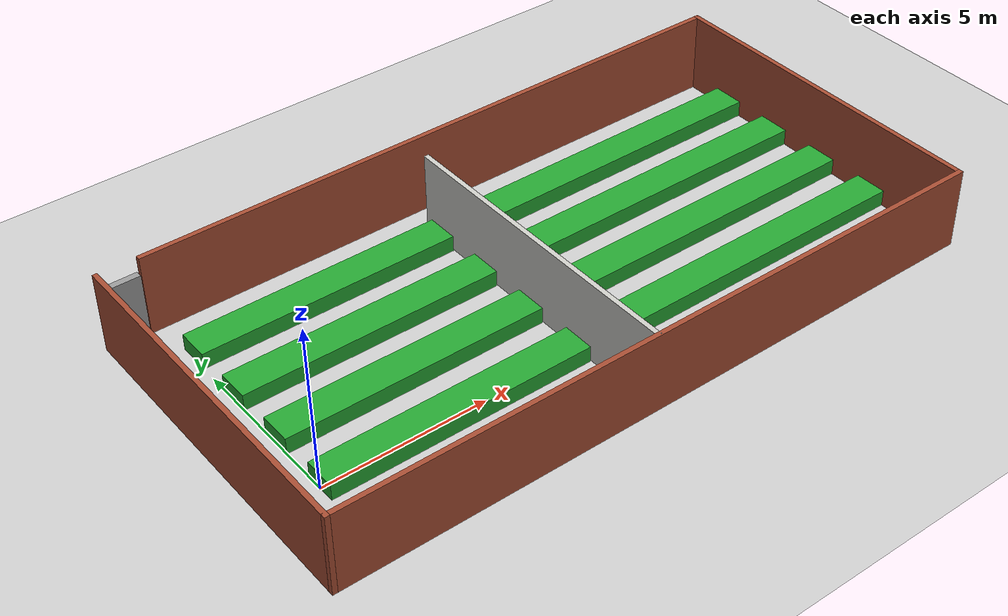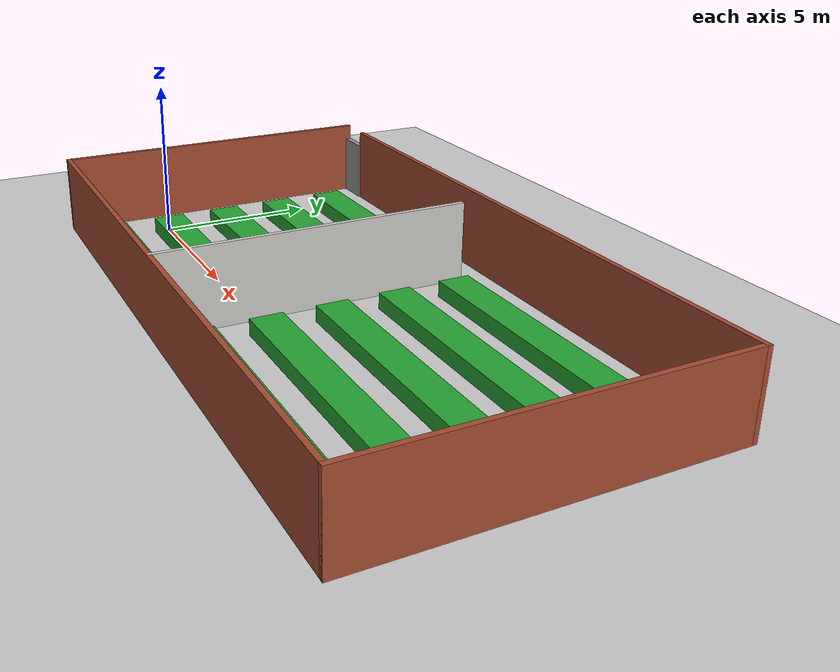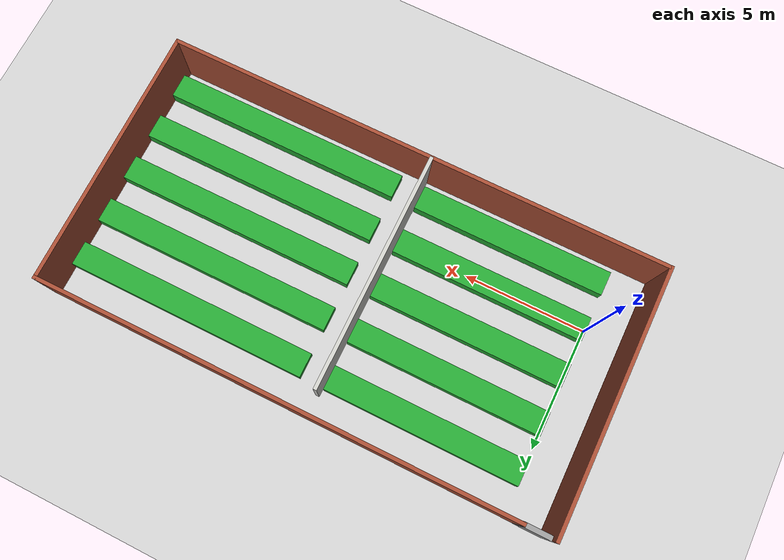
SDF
<sdf version="1.7">
 <world name="default">
  <light name="sun" type="directional">
   <pose>0 0 10 0 -0 0</pose>
   <diffuse>0.8 0.8 0.8 1</diffuse>
   <specular>0.2 0.2 0.2 1</specular>
   <attenuation>
    <range>1000</range>
    <constant>0.9</constant>
    <linear>0.01</linear>
    <quadratic>0.001</quadratic>
   </attenuation>
   <direction>-0.5 0.1 -0.9</direction>
   <spot><inner_angle>0</inner_angle><outer_angle>0</outer_angle><falloff>0</falloff></spot>
  </light>
  <model name="ground_plane">
   <static>1</static>
   <link name="link">
    <collision name="collision">
     <geometry><plane><normal>0 0 1</normal><size>100 100</size></plane></geometry>
     <surface>
      <contact><collide_bitmask>65535</collide_bitmask></contact>
      <friction><ode><mu>100</mu><mu2>50</mu2></ode></friction>
     </surface>
    </collision>
    <visual name="visual">
     <cast_shadows>0</cast_shadows>
     <geometry><plane><normal>0 0 1</normal><size>100 100</size></plane></geometry>
     <material>
      <script><uri>file://media/materials/scripts/gazebo.material</uri><name>Gazebo/Grey</name></script>
     </material>
    </visual>
   </link>
  </model>
  <gravity>0 0 -9.8</gravity>
  <magnetic_field>6e-06 2.3e-05 -4.2e-05</magnetic_field>
  <atmosphere type="adiabatic"/>
  <physics type="ode">
   <max_step_size>0.001</max_step_size>
   <real_time_factor>1</real_time_factor>
   <real_time_update_rate>1000</real_time_update_rate>
  </physics>
  <scene><ambient>0.4 0.4 0.4 1</ambient><background>0.7 0.7 0.7 1</background><shadows>1</shadows></scene>
  <audio><device>default</device></audio>
  <spherical_coordinates>
   <surface_model>EARTH_WGS84</surface_model>
   <latitude_deg>0</latitude_deg>
   <longitude_deg>0</longitude_deg>
   <elevation>0</elevation>
   <heading_deg>0</heading_deg>
  </spherical_coordinates>
  <model name="farm_world">
   <pose>8.76 2.38 0 0 -0 0</pose>
   <link name="Door_0">
    <collision name="Door_0_Collision">
     <geometry><box><size>1.14625 0.2 2</size></box></geometry>
     <pose>0 0 1 0 -0 0</pose>
    </collision>
    <visual name="Door_0_Visual">
     <pose>0 0 1 0 -0 0</pose>
     <geometry><box><size>1.14625 0.2 2</size></box></geometry>
     <material>
      <script><uri>file://media/materials/scripts/gazebo.material</uri><name>Gazebo/Grey</name></script>
     </material>
    </visual>
    <pose>-9.72981 5.28992 0 0 -0 0</pose>
   </link>
   <link name="Wall_0">
    <collision name="Wall_0_Collision">
     <geometry><box><size>20.75 0.15 2.5</size></box></geometry>
     <pose>0 0 1.25 0 -0 0</pose>
    </collision>
    <visual name="Wall_0_Visual">
     <pose>0 0 1.25 0 -0 0</pose>
     <geometry><box><size>20.75 0.15 2.5</size></box></geometry>
     <material>
      <script><uri>file://media/materials/scripts/gazebo.material</uri><name>Gazebo/Bricks</name></script>
      <ambient>1 1 1 1</ambient>
     </material>
     <meta><layer>0</layer></meta>
    </visual>
    <pose>0 -5.3 0 0 -0 0</pose>
   </link>
   <link name="Wall_1">
    <collision name="Wall_1_Collision">
     <geometry><box><size>10.75 0.15 2.5</size></box></geometry>
     <pose>0 0 1.25 0 -0 0</pose>
    </collision>
    <visual name="Wall_1_Visual">
     <pose>0 0 1.25 0 -0 0</pose>
     <geometry><box><size>10.75 0.15 2.5</size></box></geometry>
     <material>
      <script><uri>file://media/materials/scripts/gazebo.material</uri><name>Gazebo/Bricks</name></script>
      <ambient>1 1 1 1</ambient>
     </material>
     <meta><layer>0</layer></meta>
    </visual>
    <pose>10.3 0 0 0 -0 1.5708</pose>
   </link>
   <link name="Wall_10">
    <collision name="Wall_10_Collision">
     <geometry><box><size>9.75 0.15 2.5</size></box></geometry>
     <pose>0 0 1.25 0 -0 0</pose>
    </collision>
    <visual name="Wall_10_Visual">
     <pose>0 0 1.25 0 -0 0</pose>
     <geometry><box><size>9.75 0.15 2.5</size></box></geometry>
     <material>
      <script><uri>file://media/materials/scripts/gazebo.material</uri><name>Gazebo/CeilingTiled</name></script>
      <ambient>1 1 1 1</ambient>
     </material>
     <meta><layer>0</layer></meta>
    </visual>
    <pose>-0.650998 -0.458652 0 0 -0 -1.5708</pose>
   </link>
   <link name="Wall_2">
    <collision name="Wall_2_Collision">
     <geometry><box><size>19.5 0.15 2.5</size></box></geometry>
     <pose>0 0 1.25 0 -0 0</pose>
    </collision>
    <visual name="Wall_2_Visual">
     <pose>0 0 1.25 0 -0 0</pose>
     <geometry><box><size>19.5 0.15 2.5</size></box></geometry>
     <material>
      <script><uri>file://media/materials/scripts/gazebo.material</uri><name>Gazebo/Bricks</name></script>
      <ambient>1 1 1 1</ambient>
     </material>
     <meta><layer>0</layer></meta>
    </visual>
    <pose>0.625 5.3 0 0 -0 3.14159</pose>
   </link>
   <link name="Wall_4">
    <collision name="Wall_4_Collision">
     <geometry><box><size>10.75 0.15 2.5</size></box></geometry>
     <pose>0 0 1.25 0 -0 0</pose>
    </collision>
    <visual name="Wall_4_Visual">
     <pose>0 0 1.25 0 -0 0</pose>
     <geometry><box><size>10.75 0.15 2.5</size></box></geometry>
     <material>
      <script><uri>file://media/materials/scripts/gazebo.material</uri><name>Gazebo/Bricks</name></script>
      <ambient>1 1 1 1</ambient>
     </material>
     <meta><layer>0</layer></meta>
    </visual>
    <pose>-10.3 0 0 0 -0 1.5708</pose>
   </link>
   <static>1</static>
  </model>
  <model name="farm_module">
   <link name="link_2">
    <inertial>
     <mass>3.66336</mass>
     <inertia><ixx>0.388091</ixx><ixy>0</ixy><ixz>0</ixz><iyy>15.1859</iyy><iyz>0</iyz><izz>15.4084</izz></inertia>
    </inertial>
    <pose>-5 -4 0 0 -0 0</pose>
    <visual name="visual">
     <geometry><box><size>8 1 0.5</size></box></geometry>
     <material>
      <lighting>1</lighting>
      <script><uri>file://media/materials/scripts/gazebo.material</uri><name>Gazebo/Green</name></script>
      <shader type="pixel"><normal_map>__default__</normal_map></shader>
      <ambient>0 1 0 1</ambient>
      <diffuse>0 1 0 1</diffuse>
      <specular>0 1 0 1</specular>
      <emissive>0 0 0 1</emissive>
     </material>
    </visual>
    <collision name="collision">
     <geometry><box><size>7.0337 1 0.520829</size></box></geometry>
     <surface>
      <friction>
       <ode><mu>1</mu><mu2>1</mu2><fdir1>0 0 0</fdir1><slip1>0</slip1><slip2>0</slip2></ode>
       <torsional>
        <coefficient>1</coefficient>
        <patch_radius>0</patch_radius>
        <surface_radius>0</surface_radius>
        <use_patch_radius>1</use_patch_radius>
        <ode><slip>0</slip></ode>
       </torsional>
      </friction>
      <bounce><restitution_coefficient>0</restitution_coefficient><threshold>1e+06</threshold></bounce>
      <contact>
       <collide_without_contact>0</collide_without_contact>
       <collide_without_contact_bitmask>1</collide_without_contact_bitmask>
       <collide_bitmask>1</collide_bitmask>
       <ode>
        <soft_cfm>0</soft_cfm>
        <soft_erp>0.2</soft_erp>
        <kp>1e+13</kp>
        <kd>1</kd>
        <max_vel>0.01</max_vel>
        <min_depth>0</min_depth>
       </ode>
       <bullet>
        <split_impulse>1</split_impulse>
        <split_impulse_penetration_threshold>-0.01</split_impulse_penetration_threshold>
        <soft_cfm>0</soft_cfm>
        <soft_erp>0.2</soft_erp>
        <kp>1e+13</kp>
        <kd>1</kd>
       </bullet>
      </contact>
     </surface>
    </collision>
   </link>
   <link name="link_2_clone">
    <inertial>
     <mass>3.66336</mass>
     <inertia><ixx>0.388091</ixx><ixy>0</ixy><ixz>0</ixz><iyy>15.1859</iyy><iyz>0</iyz><izz>15.4084</izz></inertia>
    </inertial>
    <pose>-5 -2 0 0 -0 0</pose>
    <visual name="visual">
     <geometry><box><size>8 1 0.5</size></box></geometry>
     <material>
      <lighting>1</lighting>
      <script><uri>file://media/materials/scripts/gazebo.material</uri><name>Gazebo/Green</name></script>
      <shader type="pixel"><normal_map>__default__</normal_map></shader>
      <ambient>0 1 0 1</ambient>
      <diffuse>0 1 0 1</diffuse>
      <specular>0 1 0 1</specular>
      <emissive>0 0 0 1</emissive>
     </material>
    </visual>
    <collision name="collision">
     <geometry><box><size>7.0337 1 0.520829</size></box></geometry>
     <surface>
      <friction>
       <ode><mu>1</mu><mu2>1</mu2><fdir1>0 0 0</fdir1><slip1>0</slip1><slip2>0</slip2></ode>
       <torsional>
        <coefficient>1</coefficient>
        <patch_radius>0</patch_radius>
        <surface_radius>0</surface_radius>
        <use_patch_radius>1</use_patch_radius>
        <ode><slip>0</slip></ode>
       </torsional>
      </friction>
      <bounce><restitution_coefficient>0</restitution_coefficient><threshold>1e+06</threshold></bounce>
      <contact>
       <collide_without_contact>0</collide_without_contact>
       <collide_without_contact_bitmask>1</collide_without_contact_bitmask>
       <collide_bitmask>1</collide_bitmask>
       <ode>
        <soft_cfm>0</soft_cfm>
        <soft_erp>0.2</soft_erp>
        <kp>1e+13</kp>
        <kd>1</kd>
        <max_vel>0.01</max_vel>
        <min_depth>0</min_depth>
       </ode>
       <bullet>
        <split_impulse>1</split_impulse>
        <split_impulse_penetration_threshold>-0.01</split_impulse_penetration_threshold>
        <soft_cfm>0</soft_cfm>
        <soft_erp>0.2</soft_erp>
        <kp>1e+13</kp>
        <kd>1</kd>
       </bullet>
      </contact>
     </surface>
    </collision>
   </link>
   <link name="link_2_clone_clone">
    <inertial>
     <mass>3.66336</mass>
     <inertia><ixx>0.388091</ixx><ixy>0</ixy><ixz>0</ixz><iyy>15.1859</iyy><iyz>0</iyz><izz>15.4084</izz></inertia>
    </inertial>
    <pose>-5 0 0 0 -0 0</pose>
    <visual name="visual">
     <geometry><box><size>8 1 0.5</size></box></geometry>
     <material>
      <lighting>1</lighting>
      <script><uri>file://media/materials/scripts/gazebo.material</uri><name>Gazebo/Green</name></script>
      <shader type="pixel"><normal_map>__default__</normal_map></shader>
      <ambient>0 1 0 1</ambient>
      <diffuse>0 1 0 1</diffuse>
      <specular>0 1 0 1</specular>
      <emissive>0 0 0 1</emissive>
     </material>
    </visual>
    <collision name="collision">
     <geometry><box><size>7.0337 1 0.520829</size></box></geometry>
     <surface>
      <friction>
       <ode><mu>1</mu><mu2>1</mu2><fdir1>0 0 0</fdir1><slip1>0</slip1><slip2>0</slip2></ode>
       <torsional>
        <coefficient>1</coefficient>
        <patch_radius>0</patch_radius>
        <surface_radius>0</surface_radius>
        <use_patch_radius>1</use_patch_radius>
        <ode><slip>0</slip></ode>
       </torsional>
      </friction>
      <bounce><restitution_coefficient>0</restitution_coefficient><threshold>1e+06</threshold></bounce>
      <contact>
       <collide_without_contact>0</collide_without_contact>
       <collide_without_contact_bitmask>1</collide_without_contact_bitmask>
       <collide_bitmask>1</collide_bitmask>
       <ode>
        <soft_cfm>0</soft_cfm>
        <soft_erp>0.2</soft_erp>
        <kp>1e+13</kp>
        <kd>1</kd>
        <max_vel>0.01</max_vel>
        <min_depth>0</min_depth>
       </ode>
       <bullet>
        <split_impulse>1</split_impulse>
        <split_impulse_penetration_threshold>-0.01</split_impulse_penetration_threshold>
        <soft_cfm>0</soft_cfm>
        <soft_erp>0.2</soft_erp>
        <kp>1e+13</kp>
        <kd>1</kd>
       </bullet>
      </contact>
     </surface>
    </collision>
   </link>
   <link name="link_2_clone_clone_0">
    <inertial>
     <mass>3.66336</mass>
     <inertia><ixx>0.388091</ixx><ixy>0</ixy><ixz>0</ixz><iyy>15.1859</iyy><iyz>0</iyz><izz>15.4084</izz></inertia>
    </inertial>
    <pose>-5 2 0 0 -0 0</pose>
    <visual name="visual">
     <geometry><box><size>8 1 0.5</size></box></geometry>
     <material>
      <lighting>1</lighting>
      <script><uri>file://media/materials/scripts/gazebo.material</uri><name>Gazebo/Green</name></script>
      <shader type="pixel"><normal_map>__default__</normal_map></shader>
      <ambient>0 1 0 1</ambient>
      <diffuse>0 1 0 1</diffuse>
      <specular>0 1 0 1</specular>
      <emissive>0 0 0 1</emissive>
     </material>
    </visual>
    <collision name="collision">
     <geometry><box><size>7.0337 1 0.520829</size></box></geometry>
     <surface>
      <friction>
       <ode><mu>1</mu><mu2>1</mu2><fdir1>0 0 0</fdir1><slip1>0</slip1><slip2>0</slip2></ode>
       <torsional>
        <coefficient>1</coefficient>
        <patch_radius>0</patch_radius>
        <surface_radius>0</surface_radius>
        <use_patch_radius>1</use_patch_radius>
        <ode><slip>0</slip></ode>
       </torsional>
      </friction>
      <bounce><restitution_coefficient>0</restitution_coefficient><threshold>1e+06</threshold></bounce>
      <contact>
       <collide_without_contact>0</collide_without_contact>
       <collide_without_contact_bitmask>1</collide_without_contact_bitmask>
       <collide_bitmask>1</collide_bitmask>
       <ode>
        <soft_cfm>0</soft_cfm>
        <soft_erp>0.2</soft_erp>
        <kp>1e+13</kp>
        <kd>1</kd>
        <max_vel>0.01</max_vel>
        <min_depth>0</min_depth>
       </ode>
       <bullet>
        <split_impulse>1</split_impulse>
        <split_impulse_penetration_threshold>-0.01</split_impulse_penetration_threshold>
        <soft_cfm>0</soft_cfm>
        <soft_erp>0.2</soft_erp>
        <kp>1e+13</kp>
        <kd>1</kd>
       </bullet>
      </contact>
     </surface>
    </collision>
   </link>
   <link name="link_2_clone_clone_1">
    <inertial>
     <mass>3.66336</mass>
     <inertia><ixx>0.388091</ixx><ixy>0</ixy><ixz>0</ixz><iyy>15.1859</iyy><iyz>0</iyz><izz>15.4084</izz></inertia>
    </inertial>
    <pose>-5 4 0 0 -0 0</pose>
    <visual name="visual">
     <geometry><box><size>8 1 0.5</size></box></geometry>
     <material>
      <lighting>1</lighting>
      <script><uri>file://media/materials/scripts/gazebo.material</uri><name>Gazebo/Green</name></script>
      <shader type="pixel"><normal_map>__default__</normal_map></shader>
      <ambient>0 1 0 1</ambient>
      <diffuse>0 1 0 1</diffuse>
      <specular>0 1 0 1</specular>
      <emissive>0 0 0 1</emissive>
     </material>
    </visual>
    <collision name="collision">
     <geometry><box><size>7.0337 1 0.520829</size></box></geometry>
     <surface>
      <friction>
       <ode><mu>1</mu><mu2>1</mu2><fdir1>0 0 0</fdir1><slip1>0</slip1><slip2>0</slip2></ode>
       <torsional>
        <coefficient>1</coefficient>
        <patch_radius>0</patch_radius>
        <surface_radius>0</surface_radius>
        <use_patch_radius>1</use_patch_radius>
        <ode><slip>0</slip></ode>
       </torsional>
      </friction>
      <bounce><restitution_coefficient>0</restitution_coefficient><threshold>1e+06</threshold></bounce>
      <contact>
       <collide_without_contact>0</collide_without_contact>
       <collide_without_contact_bitmask>1</collide_without_contact_bitmask>
       <collide_bitmask>1</collide_bitmask>
       <ode>
        <soft_cfm>0</soft_cfm>
        <soft_erp>0.2</soft_erp>
        <kp>1e+13</kp>
        <kd>1</kd>
        <max_vel>0.01</max_vel>
        <min_depth>0</min_depth>
       </ode>
       <bullet>
        <split_impulse>1</split_impulse>
        <split_impulse_penetration_threshold>-0.01</split_impulse_penetration_threshold>
        <soft_cfm>0</soft_cfm>
        <soft_erp>0.2</soft_erp>
        <kp>1e+13</kp>
        <kd>1</kd>
       </bullet>
      </contact>
     </surface>
    </collision>
   </link>
   <link name="link_2_clone_clone_2">
    <inertial>
     <mass>3.66336</mass>
     <inertia><ixx>0.388091</ixx><ixy>0</ixy><ixz>0</ixz><iyy>15.1859</iyy><iyz>0</iyz><izz>15.4084</izz></inertia>
    </inertial>
    <pose>5 -4 0 0 -0 0</pose>
    <visual name="visual">
     <geometry><box><size>10 1 0.5</size></box></geometry>
     <material>
      <lighting>1</lighting>
      <script><uri>file://media/materials/scripts/gazebo.material</uri><name>Gazebo/Green</name></script>
      <shader type="pixel"><normal_map>__default__</normal_map></shader>
      <ambient>0 1 0 1</ambient>
      <diffuse>0 1 0 1</diffuse>
      <specular>0 1 0 1</specular>
      <emissive>0 0 0 1</emissive>
     </material>
    </visual>
    <collision name="collision">
     <geometry><box><size>7.0337 1 0.520829</size></box></geometry>
     <surface>
      <friction>
       <ode><mu>1</mu><mu2>1</mu2><fdir1>0 0 0</fdir1><slip1>0</slip1><slip2>0</slip2></ode>
       <torsional>
        <coefficient>1</coefficient>
        <patch_radius>0</patch_radius>
        <surface_radius>0</surface_radius>
        <use_patch_radius>1</use_patch_radius>
        <ode><slip>0</slip></ode>
       </torsional>
      </friction>
      <bounce><restitution_coefficient>0</restitution_coefficient><threshold>1e+06</threshold></bounce>
      <contact>
       <collide_without_contact>0</collide_without_contact>
       <collide_without_contact_bitmask>1</collide_without_contact_bitmask>
       <collide_bitmask>1</collide_bitmask>
       <ode>
        <soft_cfm>0</soft_cfm>
        <soft_erp>0.2</soft_erp>
        <kp>1e+13</kp>
        <kd>1</kd>
        <max_vel>0.01</max_vel>
        <min_depth>0</min_depth>
       </ode>
       <bullet>
        <split_impulse>1</split_impulse>
        <split_impulse_penetration_threshold>-0.01</split_impulse_penetration_threshold>
        <soft_cfm>0</soft_cfm>
        <soft_erp>0.2</soft_erp>
        <kp>1e+13</kp>
        <kd>1</kd>
       </bullet>
      </contact>
     </surface>
    </collision>
   </link>
   <link name="link_2_clone_clone_2_clone">
    <inertial>
     <mass>3.66336</mass>
     <inertia><ixx>0.388091</ixx><ixy>0</ixy><ixz>0</ixz><iyy>15.1859</iyy><iyz>0</iyz><izz>15.4084</izz></inertia>
    </inertial>
    <pose>5 -2 0 0 -0 0</pose>
    <visual name="visual">
     <geometry><box><size>10 1 0.5</size></box></geometry>
     <material>
      <lighting>1</lighting>
      <script><uri>file://media/materials/scripts/gazebo.material</uri><name>Gazebo/Green</name></script>
      <shader type="pixel"><normal_map>__default__</normal_map></shader>
      <ambient>0 1 0 1</ambient>
      <diffuse>0 1 0 1</diffuse>
      <specular>0 1 0 1</specular>
      <emissive>0 0 0 1</emissive>
     </material>
    </visual>
    <collision name="collision">
     <geometry><box><size>7.0337 1 0.520829</size></box></geometry>
     <surface>
      <friction>
       <ode><mu>1</mu><mu2>1</mu2><fdir1>0 0 0</fdir1><slip1>0</slip1><slip2>0</slip2></ode>
       <torsional>
        <coefficient>1</coefficient>
        <patch_radius>0</patch_radius>
        <surface_radius>0</surface_radius>
        <use_patch_radius>1</use_patch_radius>
        <ode><slip>0</slip></ode>
       </torsional>
      </friction>
      <bounce><restitution_coefficient>0</restitution_coefficient><threshold>1e+06</threshold></bounce>
      <contact>
       <collide_without_contact>0</collide_without_contact>
       <collide_without_contact_bitmask>1</collide_without_contact_bitmask>
       <collide_bitmask>1</collide_bitmask>
       <ode>
        <soft_cfm>0</soft_cfm>
        <soft_erp>0.2</soft_erp>
        <kp>1e+13</kp>
        <kd>1</kd>
        <max_vel>0.01</max_vel>
        <min_depth>0</min_depth>
       </ode>
       <bullet>
        <split_impulse>1</split_impulse>
        <split_impulse_penetration_threshold>-0.01</split_impulse_penetration_threshold>
        <soft_cfm>0</soft_cfm>
        <soft_erp>0.2</soft_erp>
        <kp>1e+13</kp>
        <kd>1</kd>
       </bullet>
      </contact>
     </surface>
    </collision>
   </link>
   <link name="link_2_clone_clone_2_clone_0">
    <inertial>
     <mass>3.66336</mass>
     <inertia><ixx>0.388091</ixx><ixy>0</ixy><ixz>0</ixz><iyy>15.1859</iyy><iyz>0</iyz><izz>15.4084</izz></inertia>
    </inertial>
    <pose>5 0 0 0 -0 0</pose>
    <visual name="visual">
     <geometry><box><size>10 1 0.5</size></box></geometry>
     <material>
      <lighting>1</lighting>
      <script><uri>file://media/materials/scripts/gazebo.material</uri><name>Gazebo/Green</name></script>
      <shader type="pixel"><normal_map>__default__</normal_map></shader>
      <ambient>0 1 0 1</ambient>
      <diffuse>0 1 0 1</diffuse>
      <specular>0 1 0 1</specular>
      <emissive>0 0 0 1</emissive>
     </material>
    </visual>
    <collision name="collision">
     <geometry><box><size>7.0337 1 0.520829</size></box></geometry>
     <surface>
      <friction>
       <ode><mu>1</mu><mu2>1</mu2><fdir1>0 0 0</fdir1><slip1>0</slip1><slip2>0</slip2></ode>
       <torsional>
        <coefficient>1</coefficient>
        <patch_radius>0</patch_radius>
        <surface_radius>0</surface_radius>
        <use_patch_radius>1</use_patch_radius>
        <ode><slip>0</slip></ode>
       </torsional>
      </friction>
      <bounce><restitution_coefficient>0</restitution_coefficient><threshold>1e+06</threshold></bounce>
      <contact>
       <collide_without_contact>0</collide_without_contact>
       <collide_without_contact_bitmask>1</collide_without_contact_bitmask>
       <collide_bitmask>1</collide_bitmask>
       <ode>
        <soft_cfm>0</soft_cfm>
        <soft_erp>0.2</soft_erp>
        <kp>1e+13</kp>
        <kd>1</kd>
        <max_vel>0.01</max_vel>
        <min_depth>0</min_depth>
       </ode>
       <bullet>
        <split_impulse>1</split_impulse>
        <split_impulse_penetration_threshold>-0.01</split_impulse_penetration_threshold>
        <soft_cfm>0</soft_cfm>
        <soft_erp>0.2</soft_erp>
        <kp>1e+13</kp>
        <kd>1</kd>
       </bullet>
      </contact>
     </surface>
    </collision>
   </link>
   <link name="link_2_clone_clone_2_clone_1">
    <inertial>
     <mass>3.66336</mass>
     <inertia><ixx>0.388091</ixx><ixy>0</ixy><ixz>0</ixz><iyy>15.1859</iyy><iyz>0</iyz><izz>15.4084</izz></inertia>
    </inertial>
    <pose>5 2 0 0 -0 0</pose>
    <visual name="visual">
     <geometry><box><size>10 1 0.5</size></box></geometry>
     <material>
      <lighting>1</lighting>
      <script><uri>file://media/materials/scripts/gazebo.material</uri><name>Gazebo/Green</name></script>
      <shader type="pixel"><normal_map>__default__</normal_map></shader>
      <ambient>0 1 0 1</ambient>
      <diffuse>0 1 0 1</diffuse>
      <specular>0 1 0 1</specular>
      <emissive>0 0 0 1</emissive>
     </material>
    </visual>
    <collision name="collision">
     <geometry><box><size>7.0337 1 0.520829</size></box></geometry>
     <surface>
      <friction>
       <ode><mu>1</mu><mu2>1</mu2><fdir1>0 0 0</fdir1><slip1>0</slip1><slip2>0</slip2></ode>
       <torsional>
        <coefficient>1</coefficient>
        <patch_radius>0</patch_radius>
        <surface_radius>0</surface_radius>
        <use_patch_radius>1</use_patch_radius>
        <ode><slip>0</slip></ode>
       </torsional>
      </friction>
      <bounce><restitution_coefficient>0</restitution_coefficient><threshold>1e+06</threshold></bounce>
      <contact>
       <collide_without_contact>0</collide_without_contact>
       <collide_without_contact_bitmask>1</collide_without_contact_bitmask>
       <collide_bitmask>1</collide_bitmask>
       <ode>
        <soft_cfm>0</soft_cfm>
        <soft_erp>0.2</soft_erp>
        <kp>1e+13</kp>
        <kd>1</kd>
        <max_vel>0.01</max_vel>
        <min_depth>0</min_depth>
       </ode>
       <bullet>
        <split_impulse>1</split_impulse>
        <split_impulse_penetration_threshold>-0.01</split_impulse_penetration_threshold>
        <soft_cfm>0</soft_cfm>
        <soft_erp>0.2</soft_erp>
        <kp>1e+13</kp>
        <kd>1</kd>
       </bullet>
      </contact>
     </surface>
    </collision>
   </link>
   <link name="link_2_clone_clone_2_clone_2">
    <inertial>
     <mass>3.66336</mass>
     <inertia><ixx>0.388091</ixx><ixy>0</ixy><ixz>0</ixz><iyy>15.1859</iyy><iyz>0</iyz><izz>15.4084</izz></inertia>
    </inertial>
    <pose>5 4 0 0 -0 0</pose>
    <visual name="visual">
     <geometry><box><size>10 1 0.5</size></box></geometry>
     <material>
      <lighting>1</lighting>
      <script><uri>file://media/materials/scripts/gazebo.material</uri><name>Gazebo/Green</name></script>
      <shader type="pixel"><normal_map>__default__</normal_map></shader>
      <ambient>0 1 0 1</ambient>
      <diffuse>0 1 0 1</diffuse>
      <specular>0 1 0 1</specular>
      <emissive>0 0 0 1</emissive>
     </material>
    </visual>
    <collision name="collision">
     <geometry><box><size>7.0337 1 0.520829</size></box></geometry>
     <surface>
      <friction>
       <ode><mu>1</mu><mu2>1</mu2><fdir1>0 0 0</fdir1><slip1>0</slip1><slip2>0</slip2></ode>
       <torsional>
        <coefficient>1</coefficient>
        <patch_radius>0</patch_radius>
        <surface_radius>0</surface_radius>
        <use_patch_radius>1</use_patch_radius>
        <ode><slip>0</slip></ode>
       </torsional>
      </friction>
      <bounce><restitution_coefficient>0</restitution_coefficient><threshold>1e+06</threshold></bounce>
      <contact>
       <collide_without_contact>0</collide_without_contact>
       <collide_without_contact_bitmask>1</collide_without_contact_bitmask>
       <collide_bitmask>1</collide_bitmask>
       <ode>
        <soft_cfm>0</soft_cfm>
        <soft_erp>0.2</soft_erp>
        <kp>1e+13</kp>
        <kd>1</kd>
        <max_vel>0.01</max_vel>
        <min_depth>0</min_depth>
       </ode>
       <bullet>
        <split_impulse>1</split_impulse>
        <split_impulse_penetration_threshold>-0.01</split_impulse_penetration_threshold>
        <soft_cfm>0</soft_cfm>
        <soft_erp>0.2</soft_erp>
        <kp>1e+13</kp>
        <kd>1</kd>
       </bullet>
      </contact>
     </surface>
    </collision>
   </link>
   <static>0</static>
   <pose>9 2 0.25 0 -0 0</pose>
  </model>
 </world>
</sdf>
